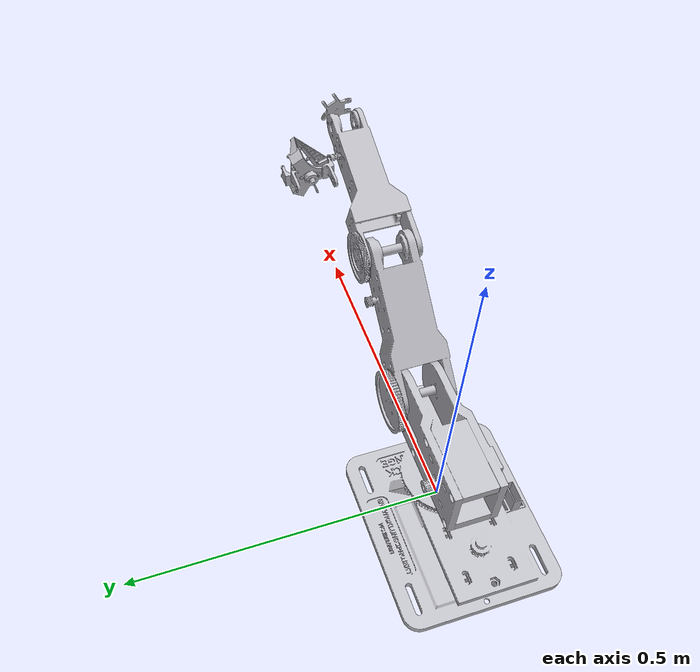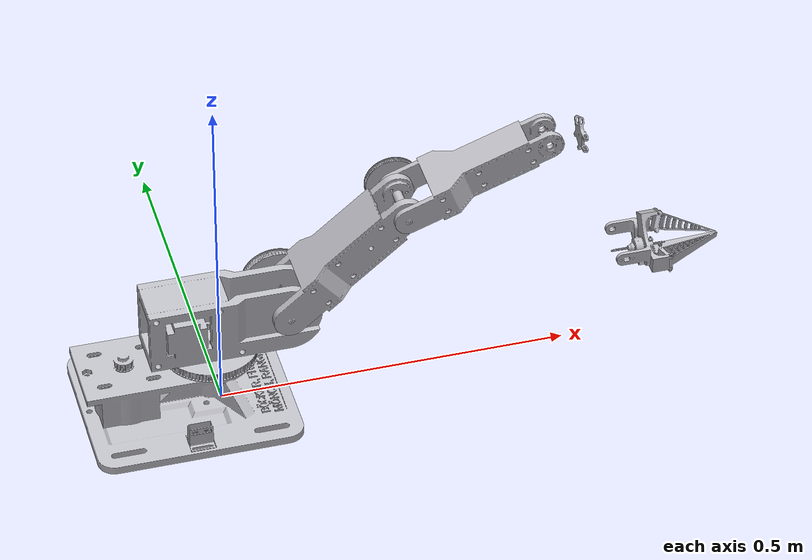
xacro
<?xml version="1.0"?>
<robot xmlns:xacro="http://www.ros.org/wiki/xacro" name="robot">
    <xacro:arg name="initial_positions_file" default="initial_positions.yaml" />

    <!-- Import robot urdf file -->
    <xacro:include filename="$(find robot_description)/urdf/robot.xacro" />

    <!-- Import control_xacro -->
    <xacro:include filename="robot.ros2_control.xacro" />

    <xacro:robot_ros2_control name="FakeSystem" initial_positions_file="$(arg initial_positions_file)"/>

</robot>

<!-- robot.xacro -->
<robot name="robot" xmlns:xacro="http://www.ros.org/wiki/xacro">

<xacro:include filename="$(find robot_description)/urdf/materials.xacro" />
<xacro:include filename="$(find robot_description)/urdf/robot.trans" />
<xacro:include filename="$(find robot_description)/urdf/robot.gazebo" />
<link name="base_link">
  <inertial>
    <origin xyz="-0.0679401062157721 0.0014277216725000752 0.0384137562968467" rpy="0 0 0"/>
    <mass value="3.1478109"/>
    <inertia ixx="0.052924" iyy="0.098855" izz="0.120214" ixy="0.000123" iyz="-0.00015" ixz="0.001855"/>
  </inertial>
  <visual>
    <origin xyz="0 0 0" rpy="0 0 0"/>
    <geometry>
      <mesh filename="file://$(find robot_description)/meshes/base_link.stl" scale="0.001 0.001 0.001"/>
    </geometry>
    <material name="silver"/>
  </visual>
  <collision>
    <origin xyz="0 0 0" rpy="0 0 0"/>
    <geometry>
      <mesh filename="file://$(find robot_description)/meshes/base_link.stl" scale="0.001 0.001 0.001"/>
    </geometry>
  </collision>
</link>

<link name="link1_1">
  <inertial>
    <origin xyz="0.009853212349380608 -0.0013058822796042395 0.03681261950807038" rpy="0 0 0"/>
    <mass value="2.6592794"/>
    <inertia ixx="0.011723" iyy="0.040532" izz="0.039189" ixy="-0.00052" iyz="7.7e-05" ixz="0.002459"/>
  </inertial>
  <visual>
    <origin xyz="0.01268 -0.001996 -0.10629" rpy="0 0 0"/>
    <geometry>
      <mesh filename="file://$(find robot_description)/meshes/link1_1.stl" scale="0.001 0.001 0.001"/>
    </geometry>
    <material name="silver"/>
  </visual>
  <collision>
    <origin xyz="0.01268 -0.001996 -0.10629" rpy="0 0 0"/>
    <geometry>
      <mesh filename="file://$(find robot_description)/meshes/link1_1.stl" scale="0.001 0.001 0.001"/>
    </geometry>
  </collision>
</link>

<link name="link2_1">
  <inertial>
    <origin xyz="0.07785203265870212 0.006684318764593031 0.06532544373999474" rpy="0 0 0"/>
    <mass value="0.94268266"/>
    <inertia ixx="0.015526" iyy="0.026356" izz="0.019554" ixy="0.002104" iyz="0.001765" ixz="-0.011421"/>
  </inertial>
  <visual>
    <origin xyz="-0.09387 -0.001996 -0.15129" rpy="0 0 0"/>
    <geometry>
      <mesh filename="file://$(find robot_description)/meshes/link2_1.stl" scale="0.001 0.001 0.001"/>
    </geometry>
    <material name="silver"/>
  </visual>
  <collision>
    <origin xyz="-0.09387 -0.001996 -0.15129" rpy="0 0 0"/>
    <geometry>
      <mesh filename="file://$(find robot_description)/meshes/link2_1.stl" scale="0.001 0.001 0.001"/>
    </geometry>
  </collision>
</link>

<link name="link3_1">
  <inertial>
    <origin xyz="0.08865319906030028 0.008333660765872107 0.03226660259352443" rpy="0 0 0"/>
    <mass value="0.53015345"/>
    <inertia ixx="0.003579" iyy="0.012679" izz="0.012845" ixy="0.001413" iyz="0.000514" ixz="-0.003887"/>
  </inertial>
  <visual>
    <origin xyz="-0.2624 -0.001996 -0.292704" rpy="0 0 0"/>
    <geometry>
      <mesh filename="file://$(find robot_description)/meshes/link3_1.stl" scale="0.001 0.001 0.001"/>
    </geometry>
    <material name="silver"/>
  </visual>
  <collision>
    <origin xyz="-0.2624 -0.001996 -0.292704" rpy="0 0 0"/>
    <geometry>
      <mesh filename="file://$(find robot_description)/meshes/link3_1.stl" scale="0.001 0.001 0.001"/>
    </geometry>
  </collision>
</link>

<link name="link4_1">
  <inertial>
    <origin xyz="0.03760750782340139 0.007481639102787173 -0.007913875947465843" rpy="0 0 0"/>
    <mass value="0.119"/>
    <inertia ixx="0.000355" iyy="0.000164" izz="0.00024" ixy="-8e-06" iyz="1e-06" ixz="3e-06"/>
  </inertial>
  <visual>
    <origin xyz="-0.469133 -0.001996 -0.367948" rpy="0 0 0"/>
    <geometry>
      <mesh filename="file://$(find robot_description)/meshes/link4_1.stl" scale="0.001 0.001 0.001"/>
    </geometry>
    <material name="silver"/>
  </visual>
  <collision>
    <origin xyz="-0.469133 -0.001996 -0.367948" rpy="0 0 0"/>
    <geometry>
      <mesh filename="file://$(find robot_description)/meshes/link4_1.stl" scale="0.001 0.001 0.001"/>
    </geometry>
  </collision>
</link>

<link name="plate_1">
  <inertial>
    <origin xyz="-0.5152768789930368 0.359593601257941 -0.0019849464337260425" rpy="0 0 0"/>
    <mass value="0.005591792200815245"/>
    <inertia ixx="1e-06" iyy="1e-06" izz="1e-06" ixy="0.0" iyz="0.0" ixz="-0.0"/>
  </inertial>
  <visual>
    <origin xyz="-1.03536 0.357604 -0.361597" rpy="0 0 0"/>
    <geometry>
      <mesh filename="file://$(find robot_description)/meshes/plate_1.stl" scale="0.001 0.001 0.001"/>
    </geometry>
    <material name="silver"/>
  </visual>
  <collision>
    <origin xyz="-1.03536 0.357604 -0.361597" rpy="0 0 0"/>
    <geometry>
      <mesh filename="file://$(find robot_description)/meshes/plate_1.stl" scale="0.001 0.001 0.001"/>
    </geometry>
  </collision>
</link>

<link name="finger1_1">
  <inertial>
    <origin xyz="0.017787445914003053 0.01945172295891951 -0.00030579074354203373" rpy="0 0 0"/>
    <mass value="0.007627104997040501"/>
    <inertia ixx="1e-06" iyy="4e-06" izz="5e-06" ixy="-1e-06" iyz="-0.0" ixz="-0.0"/>
  </inertial>
  <visual>
    <origin xyz="-0.528633 0.043004 -0.3596" rpy="0 0 0"/>
    <geometry>
      <mesh filename="file://$(find robot_description)/meshes/finger1_1.stl" scale="0.001 0.001 0.001"/>
    </geometry>
    <material name="silver"/>
  </visual>
  <collision>
    <origin xyz="-0.528633 0.043004 -0.3596" rpy="0 0 0"/>
    <geometry>
      <mesh filename="file://$(find robot_description)/meshes/finger1_1.stl" scale="0.001 0.001 0.001"/>
    </geometry>
  </collision>
</link>

<link name="finger3_1">
  <inertial>
    <origin xyz="0.016538444380158834 -0.009305155777922368 0.01652756515622833" rpy="0 0 0"/>
    <mass value="0.008118325054343886"/>
    <inertia ixx="1e-06" iyy="5e-06" izz="5e-06" ixy="1e-06" iyz="0.0" ixz="-1e-06"/>
  </inertial>
  <visual>
    <origin xyz="-0.528633 -0.024496 -0.320629" rpy="0 0 0"/>
    <geometry>
      <mesh filename="file://$(find robot_description)/meshes/finger3_1.stl" scale="0.001 0.001 0.001"/>
    </geometry>
    <material name="silver"/>
  </visual>
  <collision>
    <origin xyz="-0.528633 -0.024496 -0.320629" rpy="0 0 0"/>
    <geometry>
      <mesh filename="file://$(find robot_description)/meshes/finger3_1.stl" scale="0.001 0.001 0.001"/>
    </geometry>
  </collision>
</link>

<link name="finger2_1">
  <inertial>
    <origin xyz="0.016432808719543224 -0.009705029513755988 -0.016400937312406938" rpy="0 0 0"/>
    <mass value="0.008118323730919927"/>
    <inertia ixx="1e-06" iyy="5e-06" izz="5e-06" ixy="1e-06" iyz="-0.0" ixz="1e-06"/>
  </inertial>
  <visual>
    <origin xyz="-0.528633 -0.024496 -0.398571" rpy="0 0 0"/>
    <geometry>
      <mesh filename="file://$(find robot_description)/meshes/finger2_1.stl" scale="0.001 0.001 0.001"/>
    </geometry>
    <material name="silver"/>
  </visual>
  <collision>
    <origin xyz="-0.528633 -0.024496 -0.398571" rpy="0 0 0"/>
    <geometry>
      <mesh filename="file://$(find robot_description)/meshes/finger2_1.stl" scale="0.001 0.001 0.001"/>
    </geometry>
  </collision>
</link>

<joint name="joint1" type="revolute">
  <origin xyz="-0.01268 0.001996 0.10629" rpy="0 0 0"/>
  <parent link="base_link"/>
  <child link="link1_1"/>
  <axis xyz="-0.0 0.0 -1.0"/>
  <limit upper="2.705593" lower="-2.5571593" effort="100.0" velocity="100"/>
</joint>

<joint name="joint2" type="revolute">
  <origin xyz="0.10655 0.0 0.045" rpy="0 0 0"/>
  <parent link="link1_1"/>
  <child link="link2_1"/>
  <axis xyz="0.0 -1.0 0.0"/>
  <limit upper="0.905796" lower="-1.016198" effort="100.0" velocity="100"/>
</joint>

<joint name="joint3" type="revolute">
  <origin xyz="0.16853 0.0 0.141414" rpy="0 0 0"/>
  <parent link="link2_1"/>
  <child link="link3_1"/>
  <axis xyz="0.0 -1.0 0.0"/>
  <limit upper="2.330162" lower="-1.628862" effort="100.0" velocity="100"/>
</joint>

<joint name="joint4" type="revolute">
  <origin xyz="0.206733 0.0 0.075244" rpy="0 0 0"/>
  <parent link="link3_1"/>
  <child link="link4_1"/>
  <axis xyz="-0.0 1.0 -0.0"/>
  <limit upper="1.311329" lower="-2.087129" effort="100.0" velocity="100"/>
</joint>

<joint name="joint_plate" type="prismatic">
  <origin xyz="0.566227 -0.3596 -0.006351" rpy="0 0 0"/>
  <parent link="link4_1"/>
  <child link="plate_1"/>
  <axis xyz="1.0 0.0 0.0"/>
  <limit upper="0.009" lower="0.0" effort="100.0" velocity="100"/>
</joint>

<joint name="joint_finger1" type="revolute">
  <origin xyz="0.0595 -0.045 -0.008348" rpy="0 0 0"/>
  <parent link="link4_1"/>
  <child link="finger1_1"/>
  <axis xyz="-0.0 0.0 -1.0"/>
  <limit upper="0.349066" lower="0.0" effort="100.0" velocity="100"/>
  <mimic joint="joint_plate" multiplier="38.79"/>
</joint>

<joint name="joint_finger2" type="revolute">
  <origin xyz="0.0595 0.0225 -0.047319" rpy="0 0 0"/>
  <parent link="link4_1"/>
  <child link="finger3_1"/>
  <axis xyz="-0.0 0.866025 0.5"/>
  <limit upper="0.349066" lower="0.0" effort="100.0" velocity="100"/>
  <mimic joint="joint_plate" multiplier="38.79"/>
</joint>

<joint name="joint_finger3" type="revolute">
  <origin xyz="0.0595 0.0225 0.030623" rpy="0 0 0"/>
  <parent link="link4_1"/>
  <child link="finger2_1"/>
  <axis xyz="0.0 -0.866025 0.5"/>
  <limit upper="0.349066" lower="0.0" effort="100.0" velocity="100"/>
  <mimic joint="joint_plate" multiplier="38.79"/>
</joint>

</robot>

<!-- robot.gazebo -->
<robot name="robot" xmlns:xacro="http://www.ros.org/wiki/xacro" >

<xacro:property name="body_color" value="Gazebo/Silver" />

<gazebo>
  <plugin name="control" filename="libgazebo_ros_control.so"/>
</gazebo>
<gazebo reference="base_link">
  <material>${body_color}</material>
  <mu1>0.2</mu1>
  <mu2>0.2</mu2>
  <self_collide>true</self_collide>
  <gravity>true</gravity>
</gazebo>

<gazebo reference="link1_1">
  <material>${body_color}</material>
  <mu1>0.2</mu1>
  <mu2>0.2</mu2>
  <self_collide>true</self_collide>
</gazebo>

<gazebo reference="link2_1">
  <material>${body_color}</material>
  <mu1>0.2</mu1>
  <mu2>0.2</mu2>
  <self_collide>true</self_collide>
</gazebo>

<gazebo reference="link3_1">
  <material>${body_color}</material>
  <mu1>0.2</mu1>
  <mu2>0.2</mu2>
  <self_collide>true</self_collide>
</gazebo>

<gazebo reference="link4_1">
  <material>${body_color}</material>
  <mu1>0.2</mu1>
  <mu2>0.2</mu2>
  <self_collide>true</self_collide>
</gazebo>

<gazebo reference="plate_1">
  <material>${body_color}</material>
  <mu1>0.2</mu1>
  <mu2>0.2</mu2>
  <self_collide>true</self_collide>
</gazebo>

<gazebo reference="finger1_1">
  <material>${body_color}</material>
  <mu1>0.2</mu1>
  <mu2>0.2</mu2>
  <self_collide>true</self_collide>
</gazebo>

<gazebo reference="finger3_1">
  <material>${body_color}</material>
  <mu1>0.2</mu1>
  <mu2>0.2</mu2>
  <self_collide>true</self_collide>
</gazebo>

<gazebo reference="finger2_1">
  <material>${body_color}</material>
  <mu1>0.2</mu1>
  <mu2>0.2</mu2>
  <self_collide>true</self_collide>
</gazebo>

</robot>
